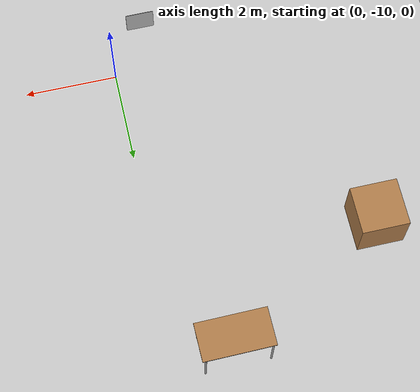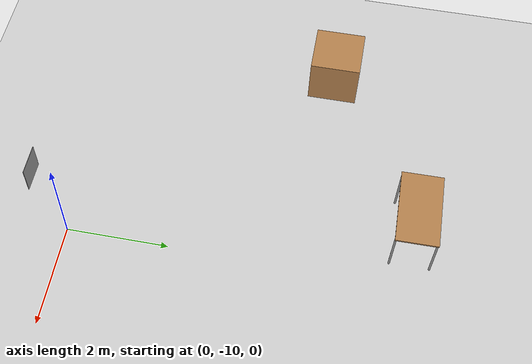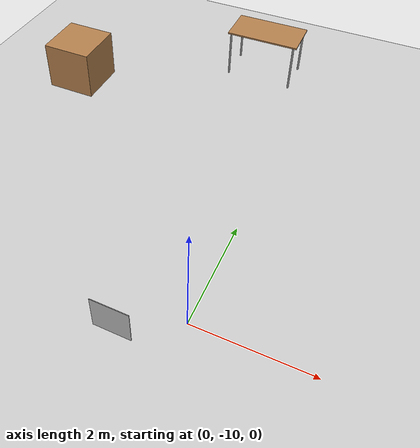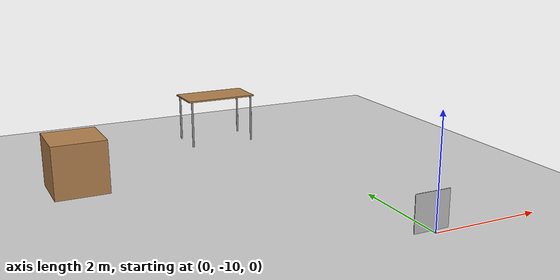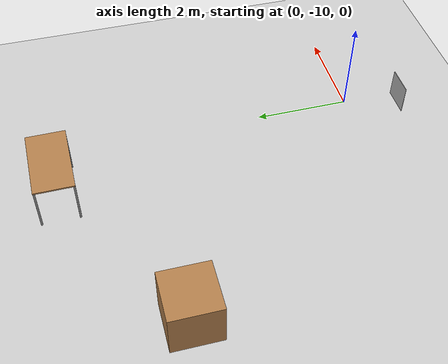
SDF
<sdf version="1.7">
 <world name="default">
  <model name="ground_plane">
   <static>1</static>
   <link name="link">
    <collision name="collision">
     <geometry><plane><normal>0 0 1</normal><size>25 25</size></plane></geometry>
     <surface><friction><ode><mu>100</mu><mu2>50</mu2></ode></friction></surface>
    </collision>
    <visual name="visual">
     <cast_shadows>0</cast_shadows>
     <geometry><plane><normal>0 0 1</normal><size>25 25</size></plane></geometry>
     <material>
      <script><uri>file://media/materials/scripts/gazebo.material</uri><name>Gazebo/Grey</name></script>
     </material>
    </visual>
   </link>
  </model>
  <model name="table">
   <static>0</static>
   <link name="link">
    <collision name="surface">
     <pose>0 0 1 0 -0 0</pose>
     <geometry><box><size>1.5 0.8 0.03</size></box></geometry>
     <surface><friction><ode><mu>0.6</mu><mu2>0.6</mu2></ode></friction></surface>
    </collision>
    <visual name="visual1">
     <pose>0 0 1 0 -0 0</pose>
     <geometry><box><size>1.5 0.8 0.03</size></box></geometry>
     <material>
      <script><uri>file://media/materials/scripts/gazebo.material</uri><name>Gazebo/Wood</name></script>
     </material>
    </visual>
    <collision name="front_left_leg">
     <pose>0.68 0.38 0.5 0 -0 0</pose>
     <geometry><cylinder><radius>0.02</radius><length>1</length></cylinder></geometry>
    </collision>
    <visual name="front_left_leg">
     <pose>0.68 0.38 0.5 0 -0 0</pose>
     <geometry><cylinder><radius>0.02</radius><length>1</length></cylinder></geometry>
     <material>
      <script><uri>file://media/materials/scripts/gazebo.material</uri><name>Gazebo/Grey</name></script>
     </material>
    </visual>
    <collision name="front_right_leg">
     <pose>0.68 -0.38 0.5 0 -0 0</pose>
     <geometry><cylinder><radius>0.02</radius><length>1</length></cylinder></geometry>
    </collision>
    <visual name="front_right_leg">
     <pose>0.68 -0.38 0.5 0 -0 0</pose>
     <geometry><cylinder><radius>0.02</radius><length>1</length></cylinder></geometry>
     <material>
      <script><uri>file://media/materials/scripts/gazebo.material</uri><name>Gazebo/Grey</name></script>
     </material>
    </visual>
    <collision name="back_right_leg">
     <pose>-0.68 -0.38 0.5 0 -0 0</pose>
     <geometry><cylinder><radius>0.02</radius><length>1</length></cylinder></geometry>
    </collision>
    <visual name="back_right_leg">
     <pose>-0.68 -0.38 0.5 0 -0 0</pose>
     <geometry><cylinder><radius>0.02</radius><length>1</length></cylinder></geometry>
     <material>
      <script><uri>file://media/materials/scripts/gazebo.material</uri><name>Gazebo/Grey</name></script>
     </material>
    </visual>
    <collision name="back_left_leg">
     <pose>-0.68 0.38 0.5 0 -0 0</pose>
     <geometry><cylinder><radius>0.02</radius><length>1</length></cylinder></geometry>
    </collision>
    <visual name="back_left_leg">
     <pose>-0.68 0.38 0.5 0 -0 0</pose>
     <geometry><cylinder><radius>0.02</radius><length>1</length></cylinder></geometry>
     <material>
      <script><uri>file://media/materials/scripts/gazebo.material</uri><name>Gazebo/Grey</name></script>
     </material>
    </visual>
    <inertial>
     <inertia><ixx>1</ixx><ixy>0</ixy><ixz>0</ixz><iyy>1</iyy><iyz>0</iyz><izz>1</izz></inertia>
     <mass>1</mass>
    </inertial>
   </link>
   <pose>-1.13215 -3.43983 0 0 -0 0.008945</pose>
  </model>
  <model name="static_apriltag_5">
   <link name="link">
    <pose>0 0 0 -1.57 1.57 -0</pose>
    <inertial>
     <mass>0.39</mass>
     <inertia><ixx>0.00058</ixx><ixy>0</ixy><ixz>0</ixz><iyy>0.00058</iyy><iyz>0</iyz><izz>0.00019</izz></inertia>
    </inertial>
    <collision name="collision"><geometry><box><size>0.6 0.6 0.01</size></box></geometry></collision>
    <visual name="visual">
     <geometry><box><size>0.6 0.6 0.01</size></box></geometry>
     <material>
      <script>
       <uri>model://apriltag/materials/scripts</uri>
       <uri>model://apriltag/materials/textures</uri>
       <name>apriltag/Diffuse5</name>
      </script>
     </material>
    </visual>
    <gravity>0</gravity>
   </link>
   <pose>-0.751899 -10.8315 0.8 0.0 0.0 0.0</pose>
   <static>1</static>
   <pose>5.04082 3.71574 0 0 -0 0</pose>
  </model>
  <model name="unit_box_0_clone_1">
   <pose>-4.62789 -5.40513 0.499995 -1e-05 -0 0.000195</pose>
   <link name="link">
    <inertial>
     <mass>1</mass>
     <inertia>
      <ixx>0.166667</ixx>
      <ixy>0</ixy>
      <ixz>0</ixz>
      <iyy>0.166667</iyy>
      <iyz>0</iyz>
      <izz>0.166667</izz>
     </inertia>
    </inertial>
    <collision name="collision"><geometry><box><size>0.999998 0.999998 1</size></box></geometry></collision>
    <visual name="visual">
     <geometry><box><size>0.999998 0.999998 1</size></box></geometry>
     <material>
      <script><uri>file://media/materials/scripts/gazebo.material</uri><name>Gazebo/Wood</name></script>
     </material>
    </visual>
   </link>
   <static>0</static>
  </model>
 </world>
</sdf>
